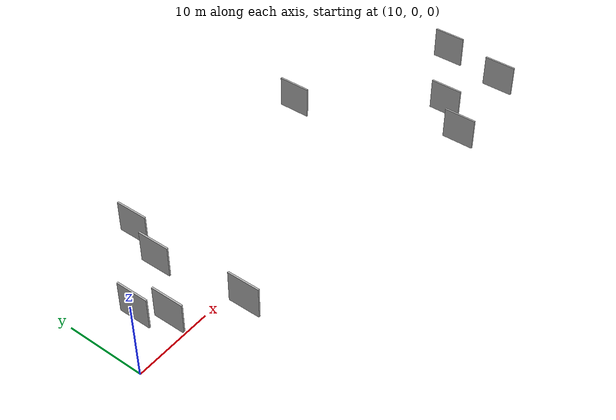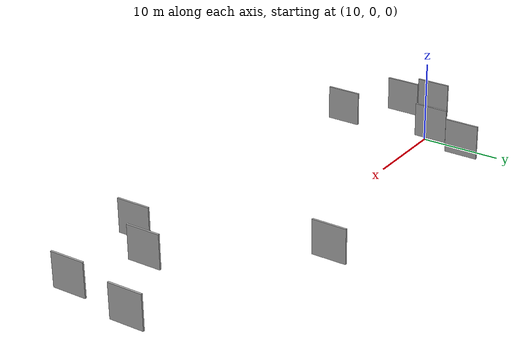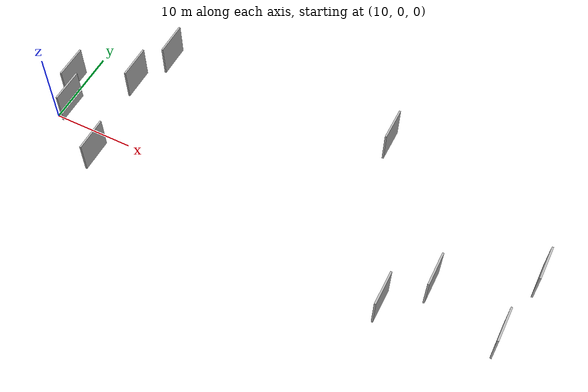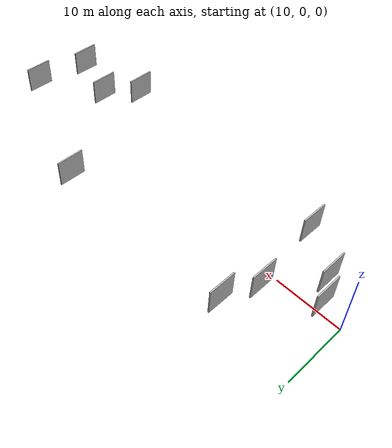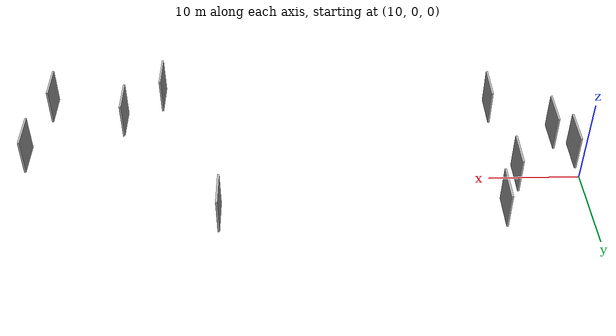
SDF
<sdf version="1.6">
 <world name="default">
  <scene>
   <sky><clouds><speed>12</speed></clouds></sky>
   <ambient>0.4 0.4 0.4 1</ambient>
   <background>0.7 0.7 0.7 1</background>
   <shadows>1</shadows>
  </scene>
  <gravity>0 0 -9.8066</gravity>
  <magnetic_field>6e-06 2.3e-05 -4.2e-05</magnetic_field>
  <physics default="0" name="default_physics" type="ode">
   <ode>
    <solver>
     <type>quick</type>
     <iters>10</iters>
     <sor>1.0</sor>
     <use_dynamic_moi_rescaling>0</use_dynamic_moi_rescaling>
    </solver>
    <constraints>
     <cfm>0</cfm>
     <erp>0.2</erp>
     <contact_max_correcting_vel>100</contact_max_correcting_vel>
     <contact_surface_layer>0.001</contact_surface_layer>
    </constraints>
   </ode>
   <max_step_size>0.004</max_step_size>
   <real_time_factor>1</real_time_factor>
   <real_time_update_rate>250</real_time_update_rate>
  </physics>
  <light name="sun" type="directional">
   <pose>0 0 10 0 0 0</pose>
   <diffuse>0.8 0.8 0.8 1</diffuse>
   <specular>0.2 0.2 0.2 1</specular>
   <attenuation>
    <range>1000</range>
    <constant>0.9</constant>
    <linear>0.01</linear>
    <quadratic>0.001</quadratic>
   </attenuation>
   <direction>-0.5 0.1 -0.9</direction>
  </light>
  <model name="grey_wall_1">
   <static>1</static>
   <pose>20.7257 10.4524 5.0 0.000000 0.000000 1.570796</pose>
   <link name="link">
    <pose>0 0 2.00 0 0 0</pose>
    <collision name="collision"><geometry><box><size>4.00 0.2 4.00</size></box></geometry></collision>
    <visual name="visual">
     <cast_shadows>0</cast_shadows>
     <geometry><box><size>4.00 0.2 4.00</size></box></geometry>
     <material>
      <script>
       <uri>model://HANNAS_wall/materials/scripts</uri>
       <uri>model://HANNAS_wall/materials/textures</uri>
       <name>vrc/HANNAS_wall</name>
      </script>
     </material>
    </visual>
   </link>
  </model>
  <model name="grey_wall_2">
   <static>1</static>
   <pose>67.9153 -6.8226 5.0 0.000000 0.000000 1.570796</pose>
   <link name="link">
    <pose>0 0 2.00 0 0 0</pose>
    <collision name="collision"><geometry><box><size>4.00 0.2 4.00</size></box></geometry></collision>
    <visual name="visual">
     <cast_shadows>0</cast_shadows>
     <geometry><box><size>4.00 0.2 4.00</size></box></geometry>
     <material>
      <script>
       <uri>model://HANNAS_wall/materials/scripts</uri>
       <uri>model://HANNAS_wall/materials/textures</uri>
       <name>vrc/HANNAS_wall</name>
      </script>
     </material>
    </visual>
   </link>
  </model>
  <model name="grey_wall_3">
   <static>1</static>
   <pose>13.8490 -1.0539 5.0 0.000000 0.000000 1.570796</pose>
   <link name="link">
    <pose>0 0 2.00 0 0 0</pose>
    <collision name="collision"><geometry><box><size>4.00 0.2 4.00</size></box></geometry></collision>
    <visual name="visual">
     <cast_shadows>0</cast_shadows>
     <geometry><box><size>4.00 0.2 4.00</size></box></geometry>
     <material>
      <script>
       <uri>model://HANNAS_wall/materials/scripts</uri>
       <uri>model://HANNAS_wall/materials/textures</uri>
       <name>vrc/HANNAS_wall</name>
      </script>
     </material>
    </visual>
   </link>
  </model>
  <model name="grey_wall_4">
   <static>1</static>
   <pose>20.0730 -5.6176 5.0 0.000000 0.000000 1.570796</pose>
   <link name="link">
    <pose>0 0 2.00 0 0 0</pose>
    <collision name="collision"><geometry><box><size>4.00 0.2 4.00</size></box></geometry></collision>
    <visual name="visual">
     <cast_shadows>0</cast_shadows>
     <geometry><box><size>4.00 0.2 4.00</size></box></geometry>
     <material>
      <script>
       <uri>model://HANNAS_wall/materials/scripts</uri>
       <uri>model://HANNAS_wall/materials/textures</uri>
       <name>vrc/HANNAS_wall</name>
      </script>
     </material>
    </visual>
   </link>
  </model>
  <model name="grey_wall_5">
   <static>1</static>
   <pose>69.3834 1.4177 5.0 0.000000 0.000000 1.570796</pose>
   <link name="link">
    <pose>0 0 2.00 0 0 0</pose>
    <collision name="collision"><geometry><box><size>4.00 0.2 4.00</size></box></geometry></collision>
    <visual name="visual">
     <cast_shadows>0</cast_shadows>
     <geometry><box><size>4.00 0.2 4.00</size></box></geometry>
     <material>
      <script>
       <uri>model://HANNAS_wall/materials/scripts</uri>
       <uri>model://HANNAS_wall/materials/textures</uri>
       <name>vrc/HANNAS_wall</name>
      </script>
     </material>
    </visual>
   </link>
  </model>
  <model name="grey_wall_6">
   <static>1</static>
   <pose>59.8031 -4.1775 5.0 0.000000 0.000000 1.570796</pose>
   <link name="link">
    <pose>0 0 2.00 0 0 0</pose>
    <collision name="collision"><geometry><box><size>4.00 0.2 4.00</size></box></geometry></collision>
    <visual name="visual">
     <cast_shadows>0</cast_shadows>
     <geometry><box><size>4.00 0.2 4.00</size></box></geometry>
     <material>
      <script>
       <uri>model://HANNAS_wall/materials/scripts</uri>
       <uri>model://HANNAS_wall/materials/textures</uri>
       <name>vrc/HANNAS_wall</name>
      </script>
     </material>
    </visual>
   </link>
  </model>
  <model name="grey_wall_7">
   <static>1</static>
   <pose>18.7710 5.4362 5.0 0.000000 0.000000 1.570796</pose>
   <link name="link">
    <pose>0 0 2.00 0 0 0</pose>
    <collision name="collision"><geometry><box><size>4.00 0.2 4.00</size></box></geometry></collision>
    <visual name="visual">
     <cast_shadows>0</cast_shadows>
     <geometry><box><size>4.00 0.2 4.00</size></box></geometry>
     <material>
      <script>
       <uri>model://HANNAS_wall/materials/scripts</uri>
       <uri>model://HANNAS_wall/materials/textures</uri>
       <name>vrc/HANNAS_wall</name>
      </script>
     </material>
    </visual>
   </link>
  </model>
  <model name="grey_wall_8">
   <static>1</static>
   <pose>12.2266 2.1366 5.0 0.000000 0.000000 1.570796</pose>
   <link name="link">
    <pose>0 0 2.00 0 0 0</pose>
    <collision name="collision"><geometry><box><size>4.00 0.2 4.00</size></box></geometry></collision>
    <visual name="visual">
     <cast_shadows>0</cast_shadows>
     <geometry><box><size>4.00 0.2 4.00</size></box></geometry>
     <material>
      <script>
       <uri>model://HANNAS_wall/materials/scripts</uri>
       <uri>model://HANNAS_wall/materials/textures</uri>
       <name>vrc/HANNAS_wall</name>
      </script>
     </material>
    </visual>
   </link>
  </model>
  <model name="grey_wall_9">
   <static>1</static>
   <pose>48.9189 10.5753 5.0 0.000000 0.000000 1.570796</pose>
   <link name="link">
    <pose>0 0 2.00 0 0 0</pose>
    <collision name="collision"><geometry><box><size>4.00 0.2 4.00</size></box></geometry></collision>
    <visual name="visual">
     <cast_shadows>0</cast_shadows>
     <geometry><box><size>4.00 0.2 4.00</size></box></geometry>
     <material>
      <script>
       <uri>model://HANNAS_wall/materials/scripts</uri>
       <uri>model://HANNAS_wall/materials/textures</uri>
       <name>vrc/HANNAS_wall</name>
      </script>
     </material>
    </visual>
   </link>
  </model>
  <model name="grey_wall_10">
   <static>1</static>
   <pose>55.9933 -8.4905 5.0 0.000000 0.000000 1.570796</pose>
   <link name="link">
    <pose>0 0 2.00 0 0 0</pose>
    <collision name="collision"><geometry><box><size>4.00 0.2 4.00</size></box></geometry></collision>
    <visual name="visual">
     <cast_shadows>0</cast_shadows>
     <geometry><box><size>4.00 0.2 4.00</size></box></geometry>
     <material>
      <script>
       <uri>model://HANNAS_wall/materials/scripts</uri>
       <uri>model://HANNAS_wall/materials/textures</uri>
       <name>vrc/HANNAS_wall</name>
      </script>
     </material>
    </visual>
   </link>
  </model>
 </world>
</sdf>
